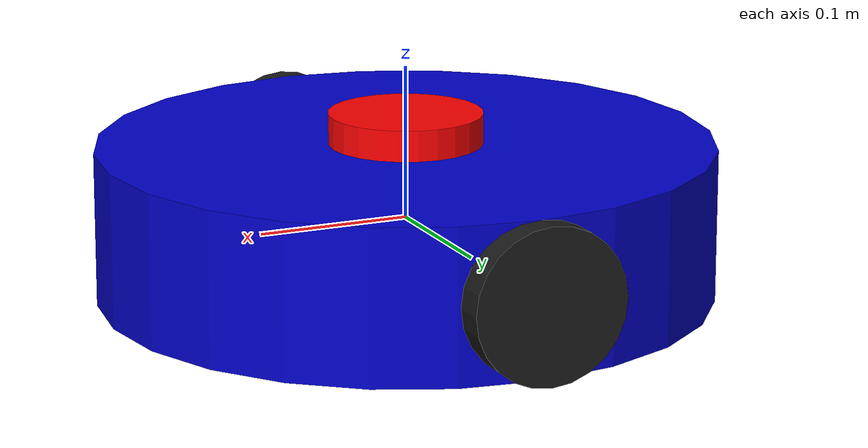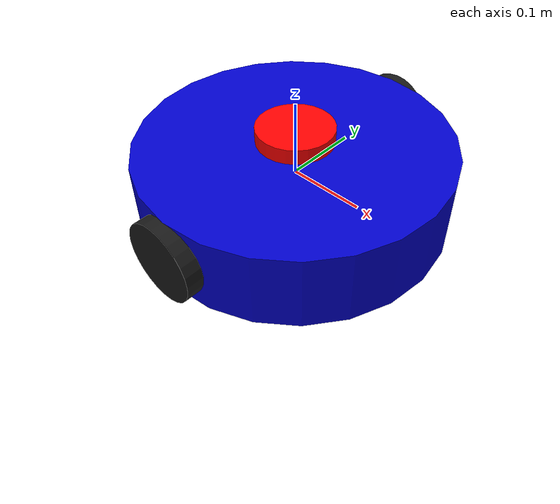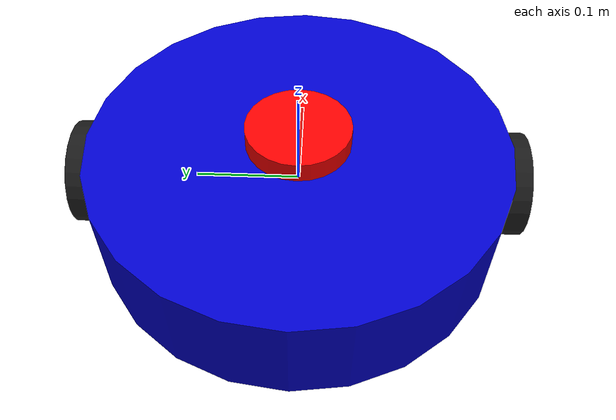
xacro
<?xml version="1.0"?>
<robot name="butler_agent" xmlns:xacro="http://www.ros.org/wiki/xacro">

  <!-- Define materials -->
  <material name="Blue">
    <color rgba="0 0 0.8 1"/>
  </material>
  <material name="Black">
    <color rgba="0.1 0.1 0.1 1"/>
  </material>
  <material name="Red">
    <color rgba="1 0 0 1"/>
  </material>

  <!-- Properties -->
  <xacro:property name="body_radius" value="0.2"/>
  <xacro:property name="body_height" value="0.1"/>
  <xacro:property name="wheel_radius" value="0.05"/>
  <xacro:property name="wheel_width" value="0.03"/>
  <xacro:property name="wheel_separation" value="${body_radius*2}"/>

  <!-- Namespace argument -->
  <xacro:arg name="namespace" default=""/>

  <!-- Add dummy base_footprint link for KDL inertia warning workaround -->
  <link name="base_footprint"/>

  <joint name="base_footprint_joint" type="fixed">
    <parent link="base_link"/>
    <child link="base_footprint"/>
    <origin xyz="0 0 ${-body_height/2}" rpy="0 0 0"/>
  </joint>

  <!-- Base link -->
  <link name="base_link">
    <visual>
      <geometry>
        <cylinder radius="${body_radius}" length="${body_height}"/>
      </geometry>
      <material name="blue">
        <color rgba="0 0 0.8 1"/>
      </material>
      <material name="Blue"/>
    </visual>
    <collision>
      <geometry>
        <cylinder radius="${body_radius}" length="${body_height}"/>
      </geometry>
    </collision>
    <inertial>
      <mass value="1.0"/>
      <inertia ixx="0.1" ixy="0" ixz="0" iyy="0.1" iyz="0" izz="0.1"/>
    </inertial>
  </link>

  <!-- Left wheel -->
  <link name="left_wheel">
    <visual>
      <geometry>
        <cylinder radius="${wheel_radius}" length="${wheel_width}"/>
      </geometry>
      <material name="black">
        <color rgba="0.1 0.1 0.1 1"/>
      </material>
      <material name="Black"/>
    </visual>
    <collision>
      <geometry>
        <cylinder radius="${wheel_radius}" length="${wheel_width}"/>
      </geometry>
    </collision>
    <inertial>
      <mass value="0.5"/>
      <inertia ixx="0.01" ixy="0" ixz="0" iyy="0.01" iyz="0" izz="0.01"/>
    </inertial>
  </link>

  <joint name="left_wheel_joint" type="continuous">
    <parent link="base_link"/>
    <child link="left_wheel"/>
    <origin xyz="0 ${wheel_separation/2} 0" rpy="${pi/2} 0 0"/>
    <axis xyz="0 0 1"/>
  </joint>

  <!-- Right wheel -->
  <link name="right_wheel">
    <visual>
      <geometry>
        <cylinder radius="${wheel_radius}" length="${wheel_width}"/>
      </geometry>
      <material name="black">
        <color rgba="0.1 0.1 0.1 1"/>
      </material>
      <material name="Black"/>
    </visual>
    <collision>
      <geometry>
        <cylinder radius="${wheel_radius}" length="${wheel_width}"/>
      </geometry>
    </collision>
    <inertial>
      <mass value="0.5"/>
      <inertia ixx="0.01" ixy="0" ixz="0" iyy="0.01" iyz="0" izz="0.01"/>
    </inertial>
  </link>

  <joint name="right_wheel_joint" type="continuous">
    <parent link="base_link"/>
    <child link="right_wheel"/>
    <origin xyz="0 -${wheel_separation/2} 0" rpy="${pi/2} 0 0"/>
    <axis xyz="0 0 1"/>
  </joint>

  <!-- Laser scanner -->
  <link name="laser">
    <visual>
      <geometry>
        <cylinder radius="0.05" length="0.02"/>
      </geometry>
      <material name="red">
        <color rgba="1 0 0 1"/>
      </material>
      <material name="Red"/>
    </visual>
    <collision>
      <geometry>
        <cylinder radius="0.05" length="0.02"/>
      </geometry>
    </collision>
    <inertial>
      <mass value="0.1"/>
      <inertia ixx="0.01" ixy="0" ixz="0" iyy="0.01" iyz="0" izz="0.01"/>
    </inertial>
  </link>

  <joint name="laser_joint" type="fixed">
    <parent link="base_link"/>
    <child link="laser"/>
    <origin xyz="0 0 ${body_height/2 + 0.01}" rpy="0 0 0"/>
  </joint>

  <!-- Differential drive plugin -->
  <gazebo>
    <plugin name="differential_drive_controller" filename="libgazebo_ros_diff_drive.so">
      <leftJoint>left_wheel_joint</leftJoint>
      <rightJoint>right_wheel_joint</rightJoint>
      <wheelSeparation>${wheel_separation}</wheelSeparation>
      <wheelDiameter>${2*wheel_radius}</wheelDiameter>
      <robotBaseFrame>$(arg namespace)/base_link</robotBaseFrame>
      <odometrySource>encoder</odometrySource>
      <odometryTopic>odom</odometryTopic>
      <odometryFrame>$(arg namespace)/odom</odometryFrame>
      <publishOdomTF>true</publishOdomTF>
      <publishWheelTF>false</publishWheelTF>
      <publishTf>true</publishTf>
      <publishWheelJointState>true</publishWheelJointState>
      <updateRate>50</updateRate>
      <commandTopic>cmd_vel</commandTopic>
      <wheelAcceleration>0</wheelAcceleration>
      <wheelTorque>5</wheelTorque>
      <rosDebugLevel>na</rosDebugLevel>
      <robotNamespace>$(arg namespace)</robotNamespace>
      <namespace>$(arg namespace)</namespace>
    </plugin>
  </gazebo>

  <!-- Laser scanner plugin -->
  <gazebo reference="laser">
    <sensor type="ray" name="head_hokuyo_sensor">
      <pose>0 0 0 0 0 0</pose>
      <visualize>true</visualize>
      <update_rate>20</update_rate>
      <ray>
        <scan>
          <horizontal>
            <samples>720</samples>
            <resolution>1</resolution>
            <min_angle>-3.14159</min_angle>
            <max_angle>3.14159</max_angle>
          </horizontal>
        </scan>
        <range>
          <min>0.15</min>
          <max>10.0</max>
          <resolution>0.01</resolution>
        </range>
      </ray>
      <plugin name="gazebo_ros_head_hokuyo_controller" filename="libgazebo_ros_laser.so">
        <topicName>scan</topicName>
        <frameName>$(arg namespace)/laser</frameName>
        <!-- Add namespace if provided -->
        <xacro:if value="${'$(arg namespace)' != ''}">
          <robotNamespace>$(arg namespace)</robotNamespace>
        </xacro:if>
      </plugin>
    </sensor>
  </gazebo>
</robot>
